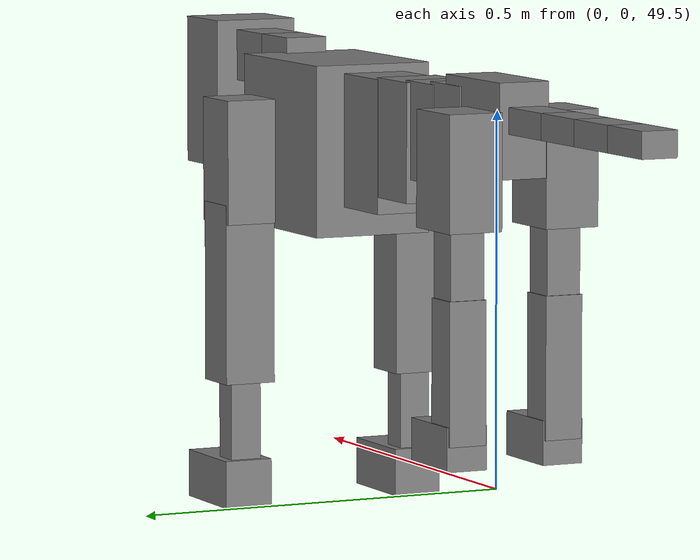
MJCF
<mujoco model="dog">

    <default>
        <joint armature="0.02" stiffness="1" damping="0.2" limited="true"/>
        <geom condim="3" friction="1 0.05 0.05" margin="0.01"/>
        <motor ctrllimited="true" ctrlrange="-1.0 1.0" forcelimited="true" gear="50"/>
    </default>

    <compiler inertiafromgeom="true" angle="radian"/>

    <option timestep="0.016" iterations="50" tolerance="1e-10" solver="Newton" jacobian="dense" cone="pyramidal"/>

    <size nconmax="20000" njmax="60000" nstack="5000000"/>
    <visual>
        <map force="0.1" zfar="30"/>
        <rgba haze="0.15 0.25 0.35 1"/>
        <quality shadowsize="2048"/>
        <global offwidth="800" offheight="800"/>
    </visual>

    <asset>
        <texture type="skybox" builtin="gradient" rgb1="0.3 0.5 0.7" rgb2="0 0 0" width="512" height="512"/>
        <texture name="texplane" type="2d" builtin="checker" rgb1=".2 .3 .4" rgb2=".1 0.15 0.2" width="512" height="512"
                 mark="cross" markrgb=".8 .8 .8"/>
        <texture name="texgeom" type="cube" builtin="flat" mark="cross" width="127" height="1278" rgb1="0.8 0.6 0.4"
                 rgb2="0.8 0.6 0.4" markrgb="1 1 1" random="0.01"/>

        <material name="matplane" reflectance="0.3" texture="texplane" texrepeat="1 1" texuniform="true"/>
        <material name="matgeom" texture="texgeom" texuniform="true" rgba="0.8 0.6 .4 1"/>
    </asset>

    <worldbody>
        <geom name="floor" pos="0 0 0" size="0 0 .25" type="plane" material="matplane" condim="3"/>

        <light directional="false" diffuse=".2 .2 .2" specular="0 0 0" pos="0 0 5" dir="0 0 -1" castshadow="false"/>
        <light mode="targetbodycom" target="torso" directional="false" diffuse=".8 .8 .8" specular="0.3 0.3 0.3"
               pos="0 0 4.0" dir="0 0 -1"/>

        <body name="root" pos="0 0 50">
            <freejoint name="root_1"/>
            <geom type="box" pos="0 0 -0.02" size="0.0774  0.0358  0.063" density="2030"/>

            <body name="spine1" pos="0.054 0 0">
                <joint name="spine1_y" axis="0 1 0" range="0 0.7" limited="true"/>
                <geom type="box" pos="0.02375 0 -0.03" size="0.04375  0.0375  0.05985" density="2030"/>

                <body name="spine2" pos="0.0612 0 0">
                    <joint name="spine2_y" axis="0 1 0" range="-0.15 0.15" limited="true"/>
                    <geom type="box" pos="0.03555  0  -0.04" size="0.04055  0.039  0.06615" density="2030"/>

                    <body name="spine3" pos="0.0730 0 0">
                        <joint name="spine3_y" axis="0 1 0" range="-0.15 0.15" limited="true"/>
                        <geom type="box" pos="0.03555  0  -0.057" size="0.04555  0.0445  0.081" density="2030"/>

                        <body name="spine4" pos="0.0780 0 0">
                            <joint name="spine4_y" axis="0 1 0" range="-0.15 0.15" limited="true"/>
                            <geom type="box" pos="0.05265  0  -0.07" size="0.05265  0.045  0.09135" density="2030"/>

                            <body name="torso" pos="0.1082 0 0">
                                <joint name="torso_y" axis="0 1 0" range="-0.15 0.15" limited="true"/>
                                <geom type="box" pos="0.11925  0  -0.085" size="0.11925  0.085  0.11745"
                                      density="2030"/>

                                <body name="neck1" pos="0.2160  0   0.0180">
                                    <joint name="neck1_y" axis="0 1 0" range="-1.2  -1" limited="true"/>
                                    <geom type="box" pos="0.0423  0  0" size="0.0423  0.03  0.036" density="2325"/>

                                    <body name="neck2" pos="0.0853  0  0">
                                        <joint name="neck2_y" axis="0 1 0" range="0.1  0" limited="true"/>
                                        <geom type="box" pos="0.0423  0  0" size="0.0423  0.03  0.036" density="2325"/>

                                        <body name="head" pos="0.0853  0  0">
                                            <joint name="head_y" axis="0 1 0" range="-0.3  -0.2" limited="true"/>
                                            <geom type="box" pos="0.0531  0  -0.055" size="0.0531  0.06  0.1044"
                                                  density="4030"/>

                                        </body>
                                    </body>
                                </body>

                                <body name="front_shoulder" pos="0.156  0   -0.0480">
                                    <joint name="front_shoulder_y" axis="0 1 0" range="-1 1.5" limited="true"/>
                                    <geom type="box" pos="0 0.13 -0.0590" size="0.0417  0.0357  0.0857" density="1158"/>
                                    <geom type="box" pos="0 -0.13 -0.0590" size="0.0417  0.0357  0.0857"
                                          density="1158"/>

                                    <body name="front_elbow" pos="0  0  -0.1180">
                                        <joint name="front_elbow_y" axis="0 1 0" range="-2 0" limited="true"/>
                                        <geom type="box" pos="0 0.13 -0.1245" size="0.0357  0.0364  0.1245"
                                              density="1081"/>
                                        <geom type="box" pos="0 -0.13 -0.1245" size="0.0357  0.0364  0.1245"
                                              density="1081"/>

                                        <body name="front_wrist" pos="0  0  -0.2490">
                                            <joint name="front_wrist_y" axis="0 1 0" range="-0.2 0" limited="true"/>
                                            <geom type="box" pos="0 0.13 -0.0614" size="0.0199  0.0221  0.0745"
                                                  density="1664"/>
                                            <geom type="box" pos="0 -0.13 -0.0614" size="0.0199  0.0221  0.0745"
                                                  density="1664"/>

                                            <body name="front_finger_end" pos="0  0  -0.1228">
                                                <joint name="front_finger_y" axis="0 1 0" range="-0.4 1"
                                                       limited="true"/>
                                                <geom type="box" pos="0.0345  0.13  -0.0179"
                                                      size="0.0633  0.0345  0.0329" density="1515"/>
                                                <geom type="box" pos="0.0345  -0.13  -0.0179"
                                                      size="0.0633  0.0345  0.0329" density="1515"/>

                                            </body>

                                        </body>
                                    </body>
                                </body>

                            </body>
                        </body>
                    </body>
                </body>
            </body>

            <body name="back_hip" pos="-0.03 0 -0.018">
                <joint name="back_hip_y" axis="0 1 0" range="-1.5 0.3" limited="true"/>
                <geom type="box" pos="0 0.07 -0.0546" size="0.0483  0.0379  0.0774" density="1154"/>
                <geom type="box" pos="0 -0.07 -0.0546" size="0.0483  0.0379  0.0774" density="1154"/>

                <body name="back_knee" pos="0  0  -0.1092">
                    <joint name="back_knee_y" axis="0 1 0" range="0 2.8" limited="true"/>
                    <geom type="box" pos="0 0.07 -0.0621" size="0.0244  0.0241  0.0776" density="1227"/>
                    <geom type="box" pos="0 -0.07 -0.0621" size="0.0244  0.0241  0.0776" density="1227"/>

                    <body name="back_ankle" pos="0  0  -0.1242">
                        <joint name="back_ankle_y" axis="0 1 0" range="-2.2 0" limited="true"/>
                        <geom type="box" pos="0 0.07 -0.0841" size="0.0264  0.0264  0.0953" density="1284"/>
                        <geom type="box" pos="0 -0.07 -0.0841" size="0.0264  0.0264  0.0953" density="1284"/>

                        <body name="back_toe_end" pos="0  0  -0.1682">
                            <joint name="back_toe_y" axis="0 1 0" range="-0.4 1" limited="true"/>
                            <geom type="box" pos="0.0286  0.07  -0.0145" size="0.0525  0.0286  0.0295" density="1515"/>
                            <geom type="box" pos="0.0286  -0.07  -0.0145" size="0.0525  0.0286  0.0295" density="1515"/>

                        </body>
                    </body>
                </body>
            </body>

            <body name="tail1" pos="-0.074 0 -0.006">
                <joint name="tail1_y" axis="0 1 0" range="-0.2 0.2" limited="true"/>
                <geom type="box" pos="-0.0536  0  0" size="0.045  0.025  0.0175" density="1587"/>

                <body name="tail2" pos="-0.09 0 0">
                    <joint name="tail2_y" axis="0 1 0" range="-0.2 0.2" limited="true"/>
                    <geom type="box" pos="-0.0536  0  0" size="0.045  0.025  0.0175" density="1587"/>

                    <body name="tail3" pos="-0.09 0 0">
                        <joint name="tail3_y" axis="0 1 0" range="-0.2 0.2" limited="true"/>
                        <geom type="box" pos="-0.0536  0  0" size="0.045  0.025  0.0175" density="1587"/>

                        <body name="tail4" pos="-0.09 0 0">
                            <joint name="tail4_y" axis="0 1 0" range="-0.2 0.2" limited="true"/>
                            <geom type="box" pos="-0.0536  0  0" size="0.045  0.025  0.0175" density="1587"/>

                        </body>
                    </body>
                </body>
            </body>
        </body>
    </worldbody>

    <actuator>
        <motor joint="spine1_y" forcerange="-150 150     "/>
        <motor joint="spine2_y" forcerange="-150 150     "/>
        <motor joint="spine3_y" forcerange="-150 150     "/>
        <motor joint="spine4_y" forcerange="-150 150     "/>
        <motor joint="torso_y" forcerange="-150 150     "/>
        <motor joint="neck1_y" forcerange="-100 100       "/>
        <motor joint="neck2_y" forcerange="-100 100       "/>
        <motor joint="head_y" forcerange="-150 150       "/>
        <motor joint="front_shoulder_y" forcerange="-162.40 175.36"/>
        <motor joint="front_elbow_y" forcerange="-186.91 178.18"/>
        <motor joint="front_wrist_y" forcerange="-107.27 69.71"/>
        <motor joint="front_finger_y" forcerange="-51.54 92.66"/>
        <motor joint="back_hip_y" forcerange="-307.39 398.22"/>
        <motor joint="back_knee_y" forcerange="-289.28 260.58"/>
        <motor joint="back_angle_y" forcerange="-200.35 121.99"/>
        <motor joint="back_toe_y" forcerange="-39.26 109.90"/>
        <motor joint="tail1_y" forcerange="-50 50     "/>
        <motor joint="tail2_y" forcerange="-50 50     "/>
        <motor joint="tail3_y" forcerange="-50 50     "/>
        <motor joint="tail4_y" forcerange="-50 50     "/>
    </actuator>
</mujoco>
